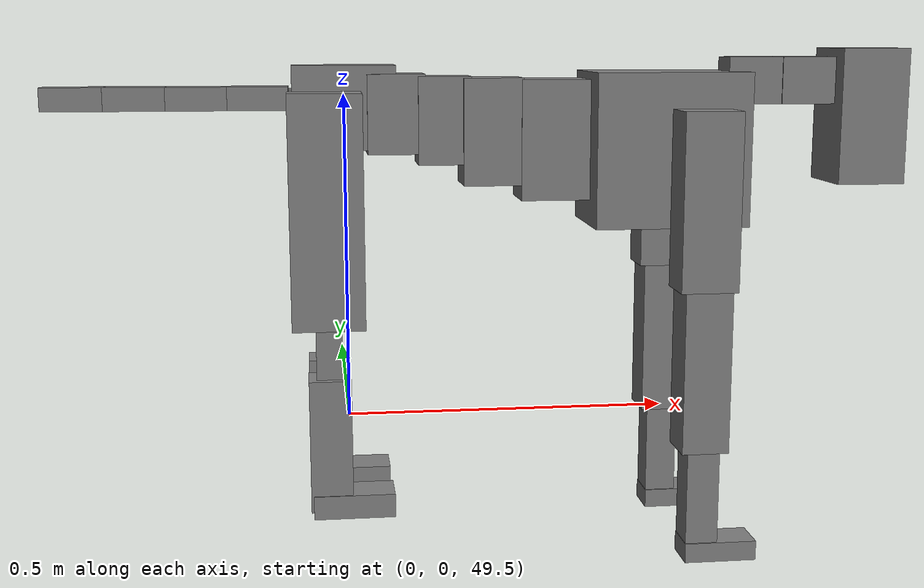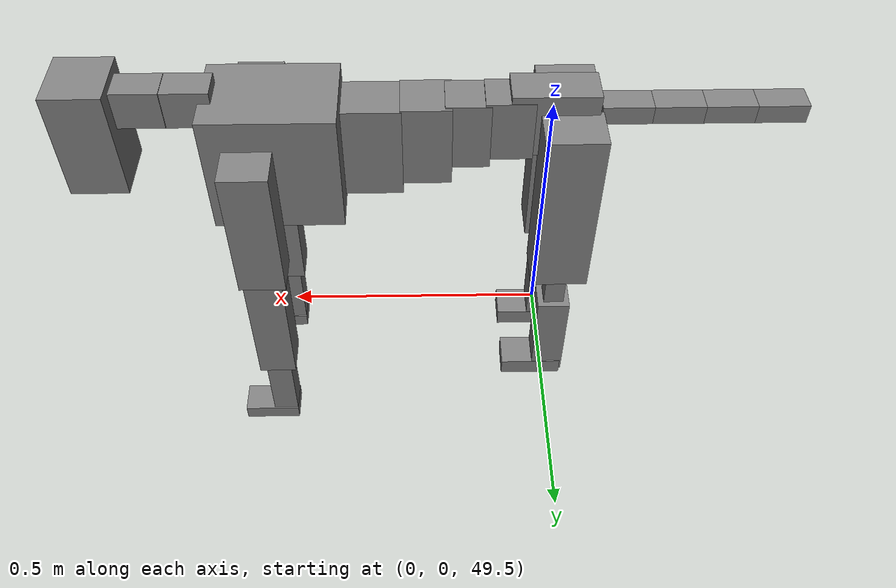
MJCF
<mujoco model="dog">

    <default>
        <joint armature="0.02" stiffness="1" damping="0.2" limited="true"/>
        <geom condim="3" friction="1 0.05 0.05" margin="0.01"/>
        <motor ctrllimited="true" ctrlrange="-1.0 1.0" forcelimited="true" gear="50"/>
    </default>

    <compiler inertiafromgeom="true" angle="radian"/>

    <option timestep="0.016" iterations="50" tolerance="1e-10" solver="Newton" jacobian="dense" cone="pyramidal"/>

    <size nconmax="20000" njmax="60000" nstack="5000000"/>
    <visual>
        <map force="0.1" zfar="30"/>
        <rgba haze="0.15 0.25 0.35 1"/>
        <quality shadowsize="2048"/>
        <global offwidth="800" offheight="800"/>
    </visual>

    <asset>
        <texture type="skybox" builtin="gradient" rgb1="0.3 0.5 0.7" rgb2="0 0 0" width="512" height="512"/>
        <texture name="texplane" type="2d" builtin="checker" rgb1=".2 .3 .4" rgb2=".1 0.15 0.2" width="512" height="512"
                 mark="cross" markrgb=".8 .8 .8"/>
        <texture name="texgeom" type="cube" builtin="flat" mark="cross" width="127" height="1278" rgb1="0.8 0.6 0.4"
                 rgb2="0.8 0.6 0.4" markrgb="1 1 1" random="0.01"/>

        <material name="matplane" reflectance="0.3" texture="texplane" texrepeat="1 1" texuniform="true"/>
        <material name="matgeom" texture="texgeom" texuniform="true" rgba="0.8 0.6 .4 1"/>
    </asset>

    <worldbody>
        <geom name="floor" pos="0 0 0" size="0 0 .25" type="plane" material="matplane" condim="3"/>

        <light directional="false" diffuse=".2 .2 .2" specular="0 0 0" pos="0 0 5" dir="0 0 -1" castshadow="false"/>
        <light mode="targetbodycom" target="torso" directional="false" diffuse=".8 .8 .8" specular="0.3 0.3 0.3"
               pos="0 0 4.0" dir="0 0 -1"/>

        <body name="root" pos="0 0 50">
            <freejoint name="root_1"/>
            <geom type="box" pos="0 0 -0.02" size="0.0774  0.0358  0.063" density="2030"/>

            <body name="spine1" pos="0.054 0 0">
                <joint name="spine1_y" axis="0 1 0" range="0 0.7" limited="true"/>
                <geom type="box" pos="0.02375 0 -0.03" size="0.04375  0.0375  0.05985" density="2030"/>

                <body name="spine2" pos="0.0612 0 0">
                    <joint name="spine2_y" axis="0 1 0" range="-0.15 0.15" limited="true"/>
                    <geom type="box" pos="0.03555  0  -0.04" size="0.04055  0.039  0.06615" density="2030"/>

                    <body name="spine3" pos="0.0730 0 0">
                        <joint name="spine3_y" axis="0 1 0" range="-0.15 0.15" limited="true"/>
                        <geom type="box" pos="0.03555  0  -0.057" size="0.04555  0.0445  0.081" density="2030"/>

                        <body name="spine4" pos="0.0780 0 0">
                            <joint name="spine4_y" axis="0 1 0" range="-0.15 0.15" limited="true"/>
                            <geom type="box" pos="0.05265  0  -0.07" size="0.05265  0.045  0.09135" density="2030"/>

                            <body name="torso" pos="0.1082 0 0">
                                <joint name="torso_y" axis="0 1 0" range="-0.15 0.15" limited="true"/>
                                <geom type="box" pos="0.11925  0  -0.085" size="0.11925  0.085  0.11745"
                                      density="2030"/>

                                <body name="neck1" pos="0.2160  0   0.0180">
                                    <joint name="neck1_y" axis="0 1 0" range="-1.2  -1" limited="true"/>
                                    <geom type="box" pos="0.0423  0  0" size="0.0423  0.03  0.036" density="2325"/>

                                    <body name="neck2" pos="0.0853  0  0">
                                        <joint name="neck2_y" axis="0 1 0" range="0.1  0" limited="true"/>
                                        <geom type="box" pos="0.0423  0  0" size="0.0423  0.03  0.036" density="2325"/>

                                        <body name="head" pos="0.0853  0  0">
                                            <joint name="head_y" axis="0 1 0" range="-0.3  -0.2" limited="true"/>
                                            <geom type="box" pos="0.0531  0  -0.055" size="0.0531  0.06  0.1044"
                                                  density="4030"/>

                                        </body>
                                    </body>
                                </body>

                                <body name="front_shoulder" pos="0.156  0   -0.0480">
                                    <joint name="front_shoulder_y" axis="0 1 0" range="-1 1.5" limited="true"/>
                                    <geom type="box" pos="0 0.13 -0.1069" size="0.0437  0.0374  0.1336" density="1158"/>
                                    <geom type="box" pos="0 -0.13 -0.1069" size="0.0437  0.0374  0.1336"
                                          density="1158"/>

                                    <body name="front_elbow" pos="0  0  -0.2138">
                                        <joint name="front_elbow_y" axis="0 1 0" range="-2 0" limited="true"/>
                                        <geom type="box" pos="0 0.13 -0.1368" size="0.0360  0.0368  0.1368"
                                              density="1081"/>
                                        <geom type="box" pos="0 -0.13 -0.1368" size="0.0360  0.0368  0.1368"
                                              density="1081"/>

                                        <body name="front_wrist" pos="0  0  -0.2737">
                                            <joint name="front_wrist_y" axis="0 1 0" range="-0.2 0" limited="true"/>
                                            <geom type="box" pos="0 0.13 -0.0796" size="0.0249  0.0277  0.0928"
                                                  density="1664"/>
                                            <geom type="box" pos="0 -0.13 -0.0796" size="0.0249  0.0277  0.0928"
                                                  density="1664"/>

                                            <body name="front_finger_end" pos="0  0  -0.1592">
                                                <joint name="front_finger_y" axis="0 1 0" range="-0.4 1"
                                                       limited="true"/>
                                                <geom type="box" pos="0.0304  0.13  -0.0001"
                                                      size="0.0557  0.0304  0.0151" density="1515"/>
                                                <geom type="box" pos="0.0304  -0.13  -0.0001"
                                                      size="0.0557  0.0304  0.0151" density="1515"/>

                                            </body>

                                        </body>
                                    </body>
                                </body>

                            </body>
                        </body>
                    </body>
                </body>
            </body>

            <body name="back_hip" pos="-0.03 0 -0.018">
                <joint name="back_hip_y" axis="0 1 0" range="-1.5 0.3" limited="true"/>
                <geom type="box" pos="0 0.07 -0.1513" size="0.0544  0.0426  0.1741" density="1154"/>
                <geom type="box" pos="0 -0.07 -0.1513" size="0.0544  0.0426  0.1741" density="1154"/>

                <body name="back_knee" pos="0  0  -0.3026">
                    <joint name="back_knee_y" axis="0 1 0" range="0 2.8" limited="true"/>
                    <geom type="box" pos="0 0.07 -0.0562" size="0.0198  0.0195  0.0718" density="1227"/>
                    <geom type="box" pos="0 -0.07 -0.0562" size="0.0198  0.0195  0.0718" density="1227"/>

                    <body name="back_ankle" pos="0  0  -0.1125">
                        <joint name="back_ankle_y" axis="0 1 0" range="-2.2 0" limited="true"/>
                        <geom type="box" pos="0 0.07 -0.0910" size="0.0317  0.0317  0.1022" density="1284"/>
                        <geom type="box" pos="0 -0.07 -0.0910" size="0.0317  0.0317  0.1022" density="1284"/>

                        <body name="back_toe_end" pos="0  0  -0.1820">
                            <joint name="back_toe_y" axis="0 1 0" range="-0.4 1" limited="true"/>
                            <geom type="box" pos="0.0336  0.07  -0.0031" size="0.0616  0.0336  0.0181" density="1515"/>
                            <geom type="box" pos="0.0336  -0.07  -0.0031" size="0.0616  0.0336  0.0181" density="1515"/>

                        </body>
                    </body>
                </body>
            </body>

            <body name="tail1" pos="-0.074 0 -0.006">
                <joint name="tail1_y" axis="0 1 0" range="-0.2 0.2" limited="true"/>
                <geom type="box" pos="-0.0536  0  0" size="0.045  0.025  0.0175" density="1587"/>

                <body name="tail2" pos="-0.09 0 0">
                    <joint name="tail2_y" axis="0 1 0" range="-0.2 0.2" limited="true"/>
                    <geom type="box" pos="-0.0536  0  0" size="0.045  0.025  0.0175" density="1587"/>

                    <body name="tail3" pos="-0.09 0 0">
                        <joint name="tail3_y" axis="0 1 0" range="-0.2 0.2" limited="true"/>
                        <geom type="box" pos="-0.0536  0  0" size="0.045  0.025  0.0175" density="1587"/>

                        <body name="tail4" pos="-0.09 0 0">
                            <joint name="tail4_y" axis="0 1 0" range="-0.2 0.2" limited="true"/>
                            <geom type="box" pos="-0.0536  0  0" size="0.045  0.025  0.0175" density="1587"/>

                        </body>
                    </body>
                </body>
            </body>
        </body>
    </worldbody>

    <actuator>
        <motor joint="spine1_y" forcerange="-150 150     "/>
        <motor joint="spine2_y" forcerange="-150 150     "/>
        <motor joint="spine3_y" forcerange="-150 150     "/>
        <motor joint="spine4_y" forcerange="-150 150     "/>
        <motor joint="torso_y" forcerange="-150 150     "/>
        <motor joint="neck1_y" forcerange="-100 100       "/>
        <motor joint="neck2_y" forcerange="-100 100       "/>
        <motor joint="head_y" forcerange="-150 150       "/>
        <motor joint="front_shoulder_y" forcerange="-150.93 198.23"/>
        <motor joint="front_elbow_y" forcerange="-188.11 179.40"/>
        <motor joint="front_wrist_y" forcerange="-125.87 95.87"/>
        <motor joint="front_finger_y" forcerange="-35.15 86.95"/>
        <motor joint="back_hip_y" forcerange="-383.43 384.94"/>
        <motor joint="back_knee_y" forcerange="-261.77 221.78"/>
        <motor joint="back_angle_y" forcerange="-239.38 167.98"/>
        <motor joint="back_toe_y" forcerange="-67.77 121.07"/>
        <motor joint="tail1_y" forcerange="-50 50     "/>
        <motor joint="tail2_y" forcerange="-50 50     "/>
        <motor joint="tail3_y" forcerange="-50 50     "/>
        <motor joint="tail4_y" forcerange="-50 50     "/>
    </actuator>
</mujoco>
